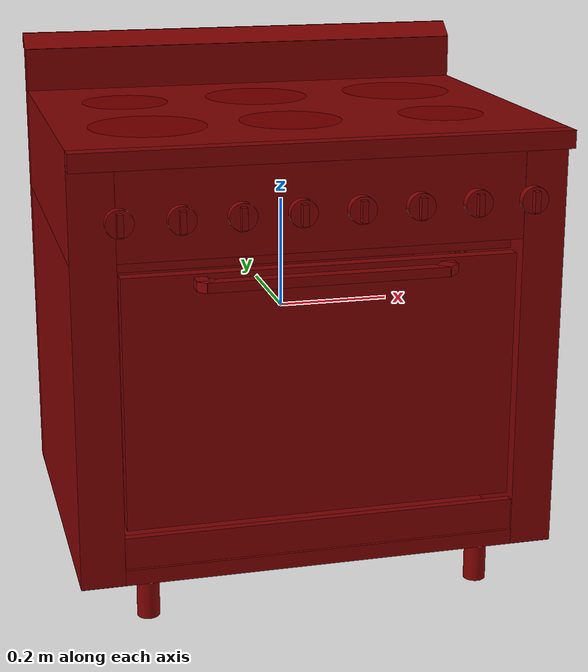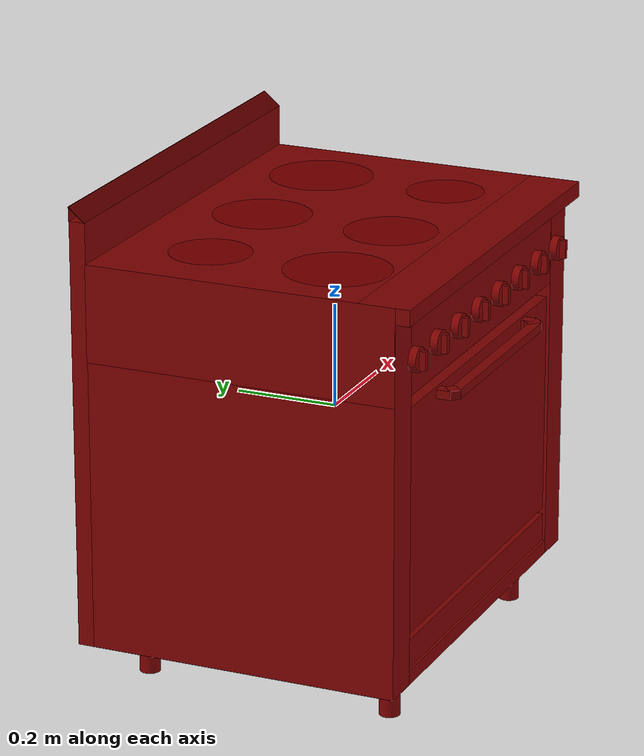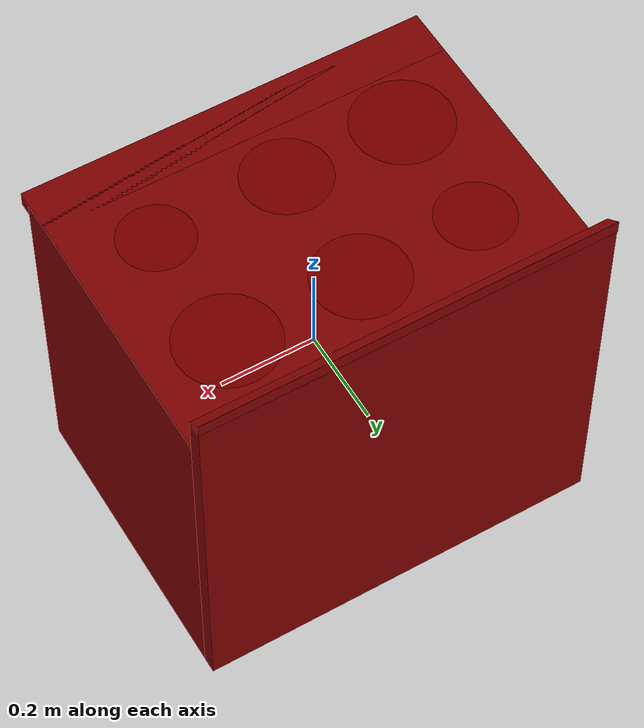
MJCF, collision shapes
<?xml version='1.0' encoding='UTF-8'?>
<mujoco model="model">
  <option timestep="0.002" gravity="0.0 0.0 -9.81"/>
  <compiler angle="radian"/>
  <asset>
    <mesh file="visuals/door.obj" name="door_vis"/>
    <mesh file="visuals/door_Clear.obj" name="door_Clear_vis"/>
    <mesh file="visuals/knob_front_center.obj" name="knob_front_center_vis"/>
    <mesh file="visuals/knob_front_left.obj" name="knob_front_left_vis"/>
    <mesh file="visuals/knob_front_right.obj" name="knob_front_right_vis"/>
    <mesh file="visuals/knob_rear_center.obj" name="knob_rear_center_vis"/>
    <mesh file="visuals/knob_rear_left.obj" name="knob_rear_left_vis"/>
    <mesh file="visuals/knob_rear_right.obj" name="knob_rear_right_vis"/>
    <mesh file="visuals/knob_temp.obj" name="knob_temp_vis"/>
    <mesh file="visuals/knob_time.obj" name="knob_time_vis"/>
    <mesh file="visuals/rack0.obj" name="rack0_vis"/>
    <mesh file="visuals/rack1.obj" name="rack1_vis"/>
    <mesh file="visuals/Body001.obj" name="Body001_vis"/>
    <texture file="visuals/T_BC001.png" name="Body001_material" type="2d"/>
    <material name="Body001_material" rgba="1 1 1 1.0" texture="Body001_material" shininess="0.5" specular="5"/>
    <texture file="visuals/T_BC001.png" name="door_material" type="2d"/>
    <material name="door_material" rgba="1 1 1 1.0" texture="door_material" shininess="0.5" specular="1"/>
    <material name="door_Clear_material" rgba="0.048628754913806915 0.048628754913806915 0.048628754913806915 0.800000011920929" shininess="0.5" specular="0.3103448502657381"/>
    <texture file="visuals/T_BC001.png" name="knob_front_center_material" type="2d"/>
    <material name="knob_front_center_material" rgba="1 1 1 1.0" texture="knob_front_center_material" shininess="0.5" specular="5"/>
    <texture file="visuals/T_BC001.png" name="knob_front_left_material" type="2d"/>
    <material name="knob_front_left_material" rgba="1 1 1 1.0" texture="knob_front_left_material" shininess="0.5" specular="5"/>
    <texture file="visuals/T_BC001.png" name="knob_front_right_material" type="2d"/>
    <material name="knob_front_right_material" rgba="1 1 1 1.0" texture="knob_front_right_material" shininess="0.5" specular="5"/>
    <texture file="visuals/T_BC001.png" name="knob_rear_center_material" type="2d"/>
    <material name="knob_rear_center_material" rgba="1 1 1 1.0" texture="knob_rear_center_material" shininess="0.5" specular="5"/>
    <texture file="visuals/T_BC001.png" name="knob_rear_left_material" type="2d"/>
    <material name="knob_rear_left_material" rgba="1 1 1 1.0" texture="knob_rear_left_material" shininess="0.5" specular="5"/>
    <texture file="visuals/T_BC001.png" name="knob_rear_right_material" type="2d"/>
    <material name="knob_rear_right_material" rgba="1 1 1 1.0" texture="knob_rear_right_material" shininess="0.5" specular="5"/>
    <texture file="visuals/T_BC001.png" name="knob_temp_material" type="2d"/>
    <material name="knob_temp_material" rgba="1 1 1 1.0" texture="knob_temp_material" shininess="0.5" specular="5"/>
    <texture file="visuals/T_BC001.png" name="knob_time_material" type="2d"/>
    <material name="knob_time_material" rgba="1 1 1 1.0" texture="knob_time_material" shininess="0.5" specular="5"/>
    <texture file="visuals/T_BC001.png" name="rack0_material" type="2d"/>
    <material name="rack0_material" rgba="1 1 1 1.0" texture="rack0_material" shininess="0.5" specular="5"/>
    <texture file="visuals/T_BC001.png" name="rack1_material" type="2d"/>
    <material name="rack1_material" rgba="1 1 1 1.0" texture="rack1_material" shininess="0.5" specular="5"/>
  </asset>
  <default>
    <default class="visual">
      <geom conaffinity="0" contype="0" group="1" type="mesh"/>
    </default>
    <default class="collision">
      <geom group="0" rgba="0.5 0 0 0.5"/>
    </default>
    <default class="spawn">
      <geom group="0" rgba="1 1 1 0.5" contype="0" conaffinity="0"/>
      <site group="0" rgba="1 1 1 0.5"/>
    </default>
    <default class="region">
      <geom group="1" conaffinity="0" contype="0" rgba="0 1 0 0"/>
    </default>
  </default>
  <worldbody>
    <body>
      <body name="object">
        <geom mesh="Body001_vis" type="mesh" solimp="0.998 0.998 0.001" solref="0.001 1" friction="0.95 0.3 0.1" class="visual" material="Body001_material"/>
        <geom type="box" pos="0.0009991551050916314 0.32055824995040894 0.029305987060070038" size="0.41986000537872314 0.01573849655687809 0.41282737255096436" quat="1.0 0.0 0.0 0.0" class="collision"/>
        <geom type="box" pos="-6.367638340666677e-17 0.32031571865081787 0.45546573400497437" size="0.42060387134552 0.02045418694615364 0.0005000059027224779" quat="0.9397256374359131 0.34192946553230286 -7.59235930863473e-17 3.5777871277648934e-24" class="collision"/>
        <geom type="box" pos="-7.158653293349906e-17 0.3360876142978668 0.45539191365242004" size="0.4205954372882843 0.00020944897551089525 0.014329597353935242" quat="1.0 0.0 0.0 0.0" class="collision"/>
        <geom type="box" pos="0.00106047501321882 0.28442537784576416 -0.09054946899414062" size="0.41953495144844055 0.013762049376964569 0.2713533341884613" quat="1.0 0.0 0.0 0.0" class="collision"/>
        <geom type="box" pos="0.0008671018294990063 0.0038781710900366306 0.2706303298473358" size="0.4197283387184143 0.3026042878627777 0.09329330176115036" quat="1.0 0.0 0.0 0.0" class="collision"/>
        <geom type="box" pos="0.0009372210479341447 0.002938526915386319 -0.36970576643943787" size="0.41965821385383606 0.3018759787082672 0.013855750672519207" quat="1.0 0.0 0.0 0.0" class="collision"/>
        <geom type="box" pos="0.38364312052726746 0.0037059225142002106 -0.011078834533691406" size="0.03721517696976662 0.3027156591415405 0.37200498580932617" quat="1.0 0.0 0.0 0.0" class="collision"/>
        <geom type="box" pos="-0.38106897473335266 0.0037059225142002106 -0.011078834533691406" size="0.03779103606939316 0.30271613597869873 0.37200498580932617" quat="1.0 0.0 0.0 0.0" class="collision"/>
        <geom type="box" pos="0.0009916865965351462 -0.27736935019493103 0.34854137897491455" size="0.41980811953544617 0.04959246888756752 0.015382237732410431" quat="1.0 0.0 0.0 0.0" class="collision"/>
        <geom type="box" pos="-0.006441392935812473 -0.2696748375892639 0.16858352720737457" size="0.34015893936157227 0.0050526149570941925 0.012017963454127312" quat="1.0 0.0 0.0 0.0" class="collision"/>
        <geom type="box" pos="-0.006441392935812473 -0.28656005859375 -0.32885345816612244" size="0.37182310223579407 0.006953998003154993 0.028841743245720863" quat="1.0 0.0 0.0 0.0" class="collision"/>
        <geom type="cylinder" pos="-0.2973065674304962 -0.2415791004896164 -0.42189061641693115" size="0.019751792773604393 0.047438085079193115" quat="1.0 0.0 0.0 0.0" class="collision"/>
        <geom type="cylinder" pos="0.3025815784931183 -0.2415791004896164 -0.42189061641693115" size="0.019751792773604393 0.047438085079193115" quat="1.0 0.0 0.0 0.0" class="collision"/>
        <geom type="cylinder" pos="-0.2973065674304962 0.24921715259552002 -0.42189061641693115" size="0.019751792773604393 0.047438085079193115" quat="1.0 0.0 0.0 0.0" class="collision"/>
        <geom type="cylinder" pos="0.3025815784931183 0.24921715259552002 -0.42189061641693115" size="0.019751792773604393 0.047438085079193115" quat="1.0 0.0 0.0 0.0" class="collision"/>
        <geom type="box" pos="0.3307049572467804 -0.08799564838409424 -0.05039212852716446" size="0.005058068782091141 0.18542349338531494 0.14291849732398987" quat="1.0 0.0 0.0 0.0" class="collision"/>
        <geom type="box" pos="-0.32686981558799744 -0.08799564838409424 -0.050392117351293564" size="0.005058073438704014 0.18542364239692688 0.14291861653327942" quat="1.0 0.0 0.0 0.0" class="collision"/>
        <geom type="box" pos="-0.30610141158103943 -0.08799564838409424 0.03368536755442619" size="0.019840186461806297 0.18543580174446106 0.0019175105262547731" quat="1.0 0.0 0.0 0.0" class="collision"/>
        <geom type="box" pos="-0.30610141158103943 -0.08799564838409424 -0.0009286291897296906" size="0.019840160384774208 0.185435488820076 0.0019175105262547731" quat="1.0 0.0 0.0 0.0" class="collision"/>
        <geom type="box" pos="-0.30610141158103943 -0.08799564838409424 -0.06802652776241302" size="0.019840136170387268 0.18543517589569092 0.0019175105262547731" quat="1.0 0.0 0.0 0.0" class="collision"/>
        <geom type="box" pos="-0.30610141158103943 -0.08799564838409424 -0.13530026376247406" size="0.01984011009335518 0.18543487787246704 0.0019175105262547731" quat="1.0 0.0 0.0 0.0" class="collision"/>
        <geom type="box" pos="0.307759553194046 -0.08799567073583603 0.033685412257909775" size="0.01984008401632309 0.18543456494808197 0.0019175105262547731" quat="1.0 0.0 0.0 0.0" class="collision"/>
        <geom type="box" pos="0.307759553194046 -0.08799567073583603 -0.0009285828564316034" size="0.019840057939291 0.1854342520236969 0.0019175105262547731" quat="1.0 0.0 0.0 0.0" class="collision"/>
        <geom type="box" pos="0.307759553194046 -0.08799567073583603 -0.06802648305892944" size="0.01984003372490406 0.18543393909931183 0.0019175105262547731" quat="1.0 0.0 0.0 0.0" class="collision"/>
        <geom type="box" pos="0.307759553194046 -0.08799567073583603 -0.13530021905899048" size="0.01984000764787197 0.18543364107608795 0.0019175105262547731" quat="1.0 0.0 0.0 0.0" class="collision"/>
        <geom type="box" pos="0.3362254202365875 -0.08799567073583603 0.08303318172693253" size="0.011012679897248745 0.18315410614013672 0.0037078524474054575" quat="1.0 0.0 0.0 0.0" class="collision"/>
        <geom type="box" pos="0.3362254500389099 -0.08799567073583603 -0.18539047241210938" size="0.011012679897248745 0.18315410614013672 0.0037078524474054575" quat="1.0 0.0 0.0 0.0" class="collision"/>
        <geom type="box" pos="-0.3413293659687042 -0.08799564838409424 0.08303312957286835" size="0.011012679897248745 0.18315410614013672 0.0037078524474054575" quat="1.0 0.0 0.0 0.0" class="collision"/>
        <geom type="box" pos="-0.34132933616638184 -0.08799564838409424 -0.18539051711559296" size="0.011012679897248745 0.18315410614013672 0.0037078524474054575" quat="1.0 0.0 0.0 0.0" class="collision"/>
        <body name="door">
          <joint axis="1.0 0.0 0.0" pos="0.0016129817813634872 -0.2922552824020386 -0.29685622453689575" limited="true" name="door_joint" range="0.0 1.5707963267948966" type="hinge" damping="1" frictionloss="1" armature=".01" stiffness="0.05"/>
          <geom mesh="door_vis" type="mesh" solimp="0.998 0.998 0.001" solref="0.001 1" friction="0.95 0.3 0.1" class="visual" material="door_material"/>
          <geom class="collision" type="box" pos="-0.000584539317060262 -0.284593790769577 -0.06605206429958344" size="0.3376789391040802 0.011523301713168621 0.2185562700033188" quat="1.0 0.0 0.0 0.0" name="door_main"/>
          <geom class="collision" type="box" pos="-0.0001881122589111328 -0.3264852464199066 0.13902106881141663" size="0.20595069229602814 0.01082634087651968 0.008509174920618534" quat="1.0 0.0 0.0 0.0" name="door_handle_main"/>
          <geom class="collision" type="box" pos="0.20505066215991974 -0.318261057138443 0.13902106881141663" size="0.014032981358468533 0.014184807427227497 0.008509357459843159" quat="0.921194314956665 0.0 0.0 0.38910287618637085" name="door_handle_Collider1"/>
          <geom class="collision" type="box" pos="0.2124926745891571 -0.30020400881767273 0.13902106881141663" size="0.011084587313234806 0.018823664635419846 0.008509357459843159" quat="1.0 0.0 0.0 0.0" name="door_handle_Collider2"/>
          <geom class="collision" type="box" pos="-0.20834961533546448 -0.3052693009376526 0.13902106881141663" size="0.01097660232335329 0.018761852756142616 0.008509357459843159" quat="1.0 0.0 0.0 0.0" name="door_handle_Collider4"/>
          <geom class="collision" type="box" pos="-0.20250751078128815 -0.32134079933166504 0.13902106881141663" size="0.01035991683602333 0.013933978043496609 0.008509357459843159" quat="0.3940070867538452 0.0 0.0 0.9191073775291443" name="door_handle_Collider3"/>
          <body name="door_Clear">
            <geom mesh="door_Clear_vis" type="mesh" solimp="0.998 0.998 0.001" solref="0.001 1" friction="0.95 0.3 0.1" class="visual" material="door_Clear_material"/>
          </body>
        </body>
        <body name="knob_front_center">
          <joint axis="0.0 -1.0 0.0" pos="0.06034150347113609 -0.3108179569244385 0.24555693566799164" limited="true" name="knob_front_center_joint" range="0.0 3.490658503988659" type="hinge" damping="0.05" frictionloss="0.75" armature="1"/>
          <geom mesh="knob_front_center_vis" type="mesh" solimp="0.998 0.998 0.001" solref="0.001 1" friction="0.95 0.3 0.1" class="visual" material="knob_front_center_material"/>
          <geom type="cylinder" pos="0.060289982706308365 -0.30690068006515503 0.24564823508262634" size="0.02347167767584324 0.00744240265339613" quat="0.7071067094802856 0.7071068286895752 -1.5700929612083792e-16 2.2148510003422914e-23" class="collision" friction="100 0.5 0.01"/>
          <geom type="box" pos="0.059647057205438614 -0.3183431923389435 0.24519884586334229" size="0.005083238240331411 0.007866647094488144 0.018166515976190567" quat="1.0 0.0 0.0 0.0" class="collision" name="knob_front_center_main" friction="100 0.5 0.01"/>
        </body>
        <body name="knob_front_left">
          <joint axis="0.0 -1.0 0.0" pos="-0.33890798687934875 -0.3108178377151489 0.24555687606334686" limited="true" name="knob_front_left_joint" range="0.0 3.490658503988659" type="hinge" damping="0.05" armature="1" frictionloss="0.75"/>
          <geom mesh="knob_front_left_vis" type="mesh" solimp="0.998 0.998 0.001" solref="0.001 1" friction="0.95 0.3 0.1" class="visual" material="knob_front_left_material"/>
          <geom type="cylinder" pos="-0.33865484595298767 -0.30690068006515503 0.24564823508262634" size="0.02347167767584324 0.00744240265339613" quat="0.7071067094802856 0.7071068286895752 -1.5700929612083792e-16 2.2148510003422914e-23" class="collision" friction="100 0.5 0.01"/>
          <geom type="box" pos="-0.3392977714538574 -0.3183431923389435 0.24519884586334229" size="0.005083238240331411 0.007866594940423965 0.01816645637154579" quat="1.0 0.0 0.0 0.0" class="collision" name="knob_front_left_main" friction="100 0.5 0.01"/>
        </body>
        <body name="knob_front_right">
          <joint axis="0.0 -1.0 0.0" pos="0.35979992151260376 -0.3108179271221161 0.24555693566799164" limited="true" name="knob_front_right_joint" range="0.0 3.5779249665883754" type="hinge" damping="0.05" frictionloss="0.75" armature="1"/>
          <geom mesh="knob_front_right_vis" type="mesh" solimp="0.998 0.998 0.001" solref="0.001 1" friction="0.95 0.3 0.1" class="visual" material="knob_front_right_material"/>
          <geom type="cylinder" pos="0.3594783842563629 -0.30690068006515503 0.24564823508262634" size="0.02347167767584324 0.00744240265339613" quat="0.7071067094802856 0.7071068286895752 -1.5700929612083792e-16 2.2148510003422914e-23" class="collision" friction="100 0.5 0.01"/>
          <geom type="box" pos="0.35883548855781555 -0.3183431923389435 0.24519884586334229" size="0.005083238240331411 0.007866687141358852 0.018166562542319298" quat="1.0 0.0 0.0 0.0" class="collision" name="knob_front_right_main" friction="100 0.5 0.01"/>
        </body>
        <body name="knob_rear_center">
          <joint axis="0.0 -1.0 0.0" pos="0.1608692705631256 -0.3108178973197937 0.24555696547031403" limited="true" name="knob_rear_center_joint" range="0.0 3.5255650890285457" type="hinge" damping="0.05" frictionloss="0.75" armature="1"/>
          <geom mesh="knob_rear_center_vis" type="mesh" solimp="0.998 0.998 0.001" solref="0.001 1" friction="0.95 0.3 0.1" class="visual" material="knob_rear_center_material"/>
          <geom type="cylinder" pos="0.1607709378004074 -0.30690068006515503 0.24564823508262634" size="0.02347167767584324 0.00744240265339613" quat="0.7071067094802856 0.7071068286895752 -1.5700929612083792e-16 2.2148510003422914e-23" class="collision" friction="100 0.5 0.01"/>
          <geom type="box" pos="0.16012801229953766 -0.3183431923389435 0.24519884586334229" size="0.005083238240331411 0.007866661064326763 0.01816653087735176" quat="1.0 0.0 0.0 0.0" class="collision" name="knob_rear_center_main" friction="100 0.5 0.01"/>
        </body>
        <body name="knob_rear_left">
          <joint axis="0.0 -1.0 0.0" pos="-0.2386472523212433 -0.3108178377151489 0.24555687606334686" limited="true" name="knob_rear_left_joint" range="0.0 3.5255650890285457" type="hinge" damping="0.05" armature="1" frictionloss="0.75"/>
          <geom mesh="knob_rear_left_vis" type="mesh" solimp="0.998 0.998 0.001" solref="0.001 1" friction="0.95 0.3 0.1" class="visual" material="knob_rear_left_material"/>
          <geom type="cylinder" pos="-0.23832663893699646 -0.30690068006515503 0.24564823508262634" size="0.02347167767584324 0.00744240265339613" quat="0.7071067094802856 0.7071068286895752 -1.5700929612083792e-16 2.2148510003422914e-23" class="collision" friction="100 0.5 0.01"/>
          <geom type="box" pos="-0.2389695644378662 -0.3183431923389435 0.24519884586334229" size="0.005083238240331411 0.00786660797894001 0.018166471272706985" quat="1.0 0.0 0.0 0.0" class="collision" name="knob_rear_left_main" friction="100 0.5 0.01"/>
        </body>
        <body name="knob_rear_right">
          <joint axis="0.0 -1.0 0.0" pos="0.26078206300735474 -0.31081801652908325 0.24555693566799164" limited="true" name="knob_rear_right_joint" range="0.0 3.5255650890285457" type="hinge" damping="0.05" frictionloss="0.75" armature="1"/>
          <geom mesh="knob_rear_right_vis" type="mesh" solimp="0.998 0.998 0.001" solref="0.001 1" friction="0.95 0.3 0.1" class="visual" material="knob_rear_right_material"/>
          <geom type="cylinder" pos="0.2606376111507416 -0.30690068006515503 0.24564823508262634" size="0.02347167767584324 0.00744240265339613" quat="0.7071067094802856 0.7071068286895752 -1.5700929612083792e-16 2.2148510003422914e-23" class="collision" friction="100 0.5 0.01"/>
          <geom type="box" pos="0.2599946856498718 -0.3183431923389435 0.24519884586334229" size="0.005083238240331411 0.007866674102842808 0.018166547641158104" quat="1.0 0.0 0.0 0.0" class="collision" name="knob_rear_right_main" friction="100 0.5 0.01"/>
        </body>
        <body name="knob_temp">
          <joint axis="0.0 1.0 0.0" pos="-0.03939433395862579 -0.3108179569244385 0.24555693566799164" limited="true" name="knob_temp_joint" range="0.0 3.3161255787892263" type="hinge" damping="0.05" armature="1" frictionloss="0.75"/>
          <geom mesh="knob_temp_vis" type="mesh" solimp="0.998 0.998 0.001" solref="0.001 1" friction="0.95 0.3 0.1" class="visual" material="knob_temp_material"/>
          <geom type="cylinder" pos="-0.0393357127904892 -0.30690068006515503 0.24564823508262634" size="0.02347167767584324 0.00744240265339613" quat="0.7071067094802856 0.7071068286895752 -1.5700929612083792e-16 2.2148510003422914e-23" class="collision" friction="100 0.5 0.01"/>
          <geom class="collision" type="box" pos="-0.03997863829135895 -0.3183431923389435 0.24519884586334229" size="0.005083238240331411 0.0078666340559721 0.018166501075029373" quat="1.0 0.0 0.0 0.0" name="knob_temp_main" friction="100 0.5 0.01"/>
        </body>
        <body name="knob_time">
          <joint axis="0.0 1.0 0.0" pos="-0.13926179707050323 -0.3108179271221161 0.24555693566799164" limited="true" name="knob_time_joint" range="0.0 4.014257279586958" type="hinge" damping="0.05" armature="1" frictionloss="0.75"/>
          <geom mesh="knob_time_vis" type="mesh" solimp="0.998 0.998 0.001" solref="0.001 1" friction="0.95 0.3 0.1" class="visual" material="knob_time_material"/>
          <geom type="cylinder" pos="-0.13933701813220978 -0.30690068006515503 0.24564823508262634" size="0.02347167767584324 0.00744240265339613" quat="0.7071067094802856 0.7071068286895752 -1.5700929612083792e-16 2.2148510003422914e-23" class="collision" friction="100 0.5 0.01"/>
          <geom class="collision" type="box" pos="-0.13997994363307953 -0.3183431923389435 0.24519884586334229" size="0.005083238240331411 0.007866621017456055 0.01816648617386818" quat="1.0 0.0 0.0 0.0" name="knob_time_main" friction="100 0.5 0.01"/>
        </body>
        <body name="rack0">
          <geom class="region" name="reg_rack0" type="box" pos="0.0008660703897476196 -0.08825275301933289 -0.008659835904836655" size="0.28142183816432953 0.1780389974117279 0.04349892011284828"/>
          <joint axis="0.0 -1.0 0.0" pos="-0.0014364566886797547 -0.0893985778093338 -0.05968460440635681" limited="true" name="rack0_joint" range="0.0 0.3" type="slide" damping="1" frictionloss="1" armature=".01" stiffness="0.05"/>
          <geom mesh="rack0_vis" type="mesh" solimp="0.998 0.998 0.001" solref="0.001 1" friction="0.95 0.3 0.1" class="visual" material="rack0_material"/>
          <geom type="box" pos="-0.001267431303858757 -0.08821680396795273 -0.05920788645744324" size="0.32001471519470215 0.18229861557483673 0.0057028913870453835" quat="1.0 0.0 0.0 0.0" class="collision"/>
        </body>
        <body name="rack1">
          <geom class="region" name="reg_rack1" type="box" pos="-0.0003443211317062378 -0.08825274929404259 0.10269310511648655" size="0.31206968224048615 0.17316048017144203 0.05234246312081814"/>
          <joint axis="0.0 -1.0 0.0" pos="-0.0015620995545759797 -0.08939860016107559 0.04237963259220123" limited="true" name="rack1_joint" range="0.0 0.3" type="slide" damping="1" frictionloss="1" armature=".01" stiffness="0.05"/>
          <geom mesh="rack1_vis" type="mesh" solimp="0.998 0.998 0.001" solref="0.001 1" friction="0.95 0.3 0.1" class="visual" material="rack1_material"/>
          <geom type="box" pos="-0.001267431303858757 -0.08821680396795273 0.043029382824897766" size="0.32001471519470215 0.18229861557483673 0.005443538073450327" quat="1.0 0.0 0.0 0.0" class="collision"/>
        </body>
        <geom class="region" name="reg_int" type="box" pos="0.0003100931644439697 -0.0002694129943847656 -0.09753918647766113" size="0.2846316227912903 0.266022337436676 0.2525747547149658"/>
        <site type="cylinder" rgba="0.5 0 0 0.5" size="0.07792458683252335 0.0001" pos="-0.25928744673728943 0.1320689171552658 0.3639736771583557" name="burner_on_rear_left"/>
        <site type="cylinder" rgba="0.5 0 0 0.5" size="0.09438978135585785 0.0001" pos="-0.012764574028551579 0.14235520362854004 0.3639736771583557" name="burner_on_rear_center"/>
        <site type="cylinder" rgba="0.5 0 0 0.5" size="0.10091869533061981 0.0001" pos="0.25842517614364624 0.14246927201747894 0.3639736771583557" name="burner_on_rear_right"/>
        <site type="cylinder" rgba="0.5 0 0 0.5" size="0.10086894780397415 0.0001" pos="-0.25959768891334534 -0.11982551962137222 0.3639737069606781" name="burner_on_front_left"/>
        <site type="cylinder" rgba="0.5 0 0 0.5" size="0.08859284222126007 0.0001" pos="-0.01277333963662386 -0.11851824074983597 0.3639736771583557" name="burner_on_front_center"/>
        <site type="cylinder" rgba="0.5 0 0 0.5" size="0.07502291351556778 0.0001" pos="0.2581620514392853 -0.11594367027282715 0.3639736771583557" name="burner_on_front_right"/>
        <site name="burner_rear_left_place_site" type="cylinder" rgba="0.5 0 0 0" size="0.07792458683252335 4.999999873689376e-05" pos="-0.25928744673728943 0.1320689171552658 0.3639736771583557"/>
        <site name="burner_rear_center_place_site" type="cylinder" rgba="0.5 0 0 0" size="0.09438978135585785 4.999999873689376e-05" pos="-0.012764574028551579 0.14235520362854004 0.3639736771583557"/>
        <site name="burner_rear_right_place_site" type="cylinder" rgba="0.5 0 0 0" size="0.10091869533061981 4.999999873689376e-05" pos="0.25842517614364624 0.14246927201747894 0.3639736771583557"/>
        <site name="burner_front_left_place_site" type="cylinder" rgba="0.5 0 0 0" size="0.10086894780397415 5.0040744099533185e-05" pos="-0.25959768891334534 -0.11982551962137222 0.3639737069606781"/>
        <site name="burner_front_center_place_site" type="cylinder" rgba="0.5 0 0 0" size="0.08859284222126007 4.999999873689376e-05" pos="-0.01277333963662386 -0.11851824074983597 0.3639736771583557"/>
        <site name="burner_front_right_place_site" type="cylinder" rgba="0.5 0 0 0" size="0.07502291351556778 4.999999873689376e-05" pos="0.2581620514392853 -0.11594367027282715 0.3639736771583557"/>
        <geom class="region" name="reg_main" type="box" pos="0.000999148702248931 0.018583834171295166 -0.0528859943151474" size="0.42086003518104553 0.31871320104599 0.417809618473053"/>
      </body>
    </body>
  </worldbody>
  <actuator>
    <motor name="door_joint_actuator" joint="door_joint" gear="50"/>
    <motor name="knob_front_center_joint_actuator" joint="knob_front_center_joint" gear="50"/>
    <motor name="knob_front_left_joint_actuator" joint="knob_front_left_joint" gear="50"/>
    <motor name="knob_front_right_joint_actuator" joint="knob_front_right_joint" gear="50"/>
    <motor name="knob_rear_center_joint_actuator" joint="knob_rear_center_joint" gear="50"/>
    <motor name="knob_rear_left_joint_actuator" joint="knob_rear_left_joint" gear="50"/>
    <motor name="knob_rear_right_joint_actuator" joint="knob_rear_right_joint" gear="50"/>
    <motor name="knob_temp_joint_actuator" joint="knob_temp_joint" gear="50"/>
    <motor name="knob_time_joint_actuator" joint="knob_time_joint" gear="50"/>
    <motor name="rack0_joint_actuator" joint="rack0_joint" gear="50"/>
    <motor name="rack1_joint_actuator" joint="rack1_joint" gear="50"/>
  </actuator>
</mujoco>
